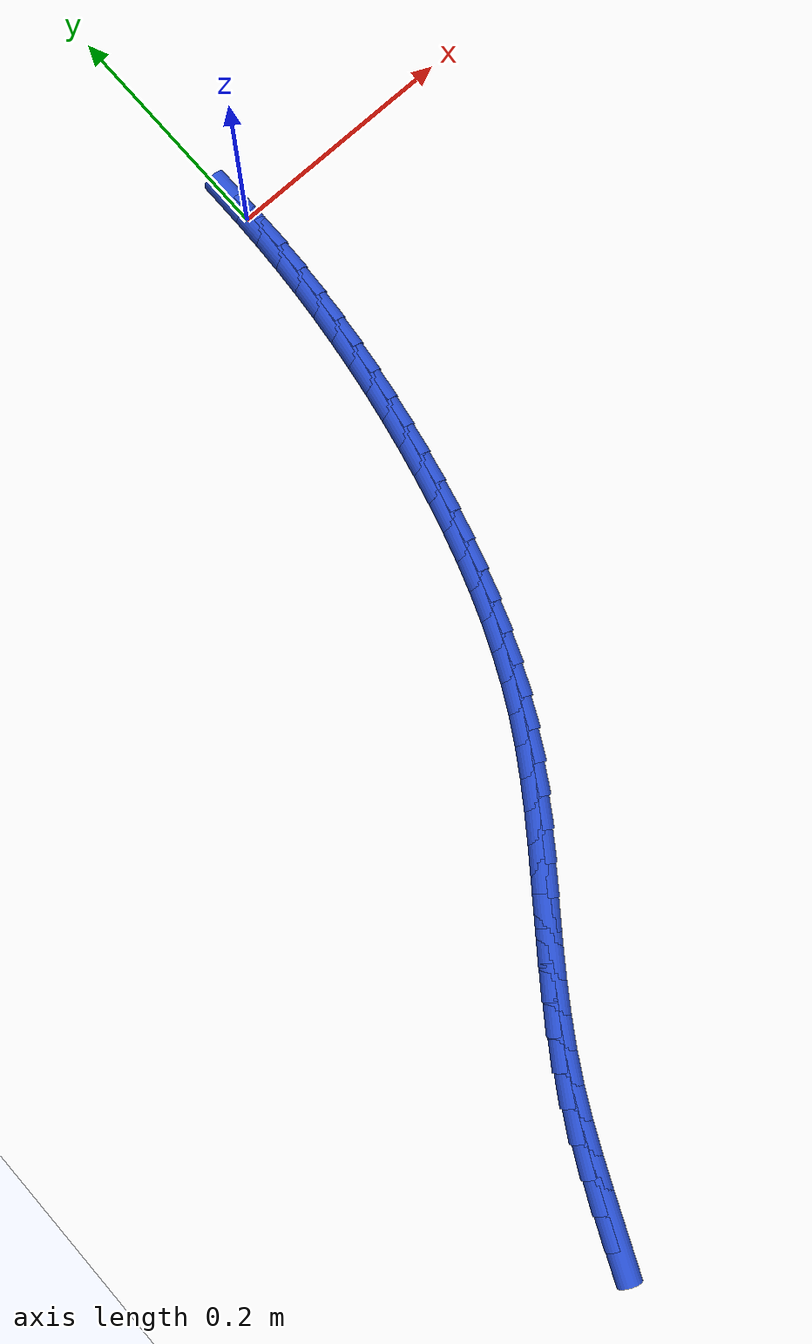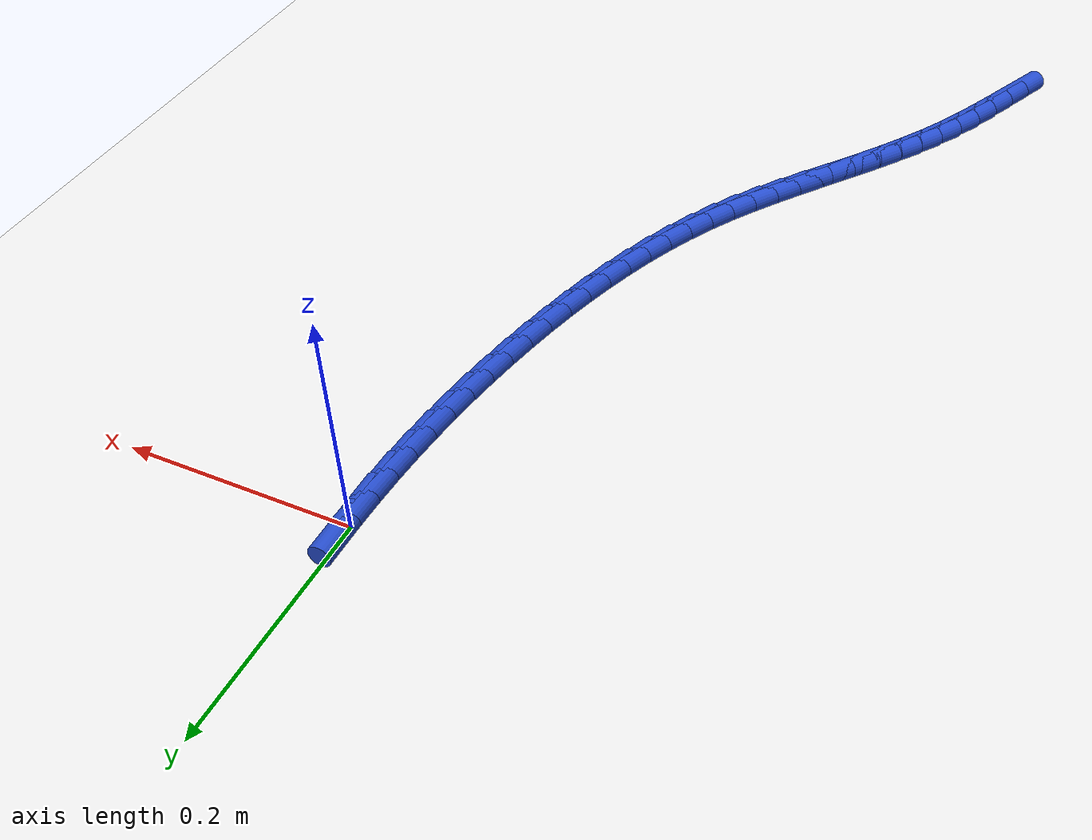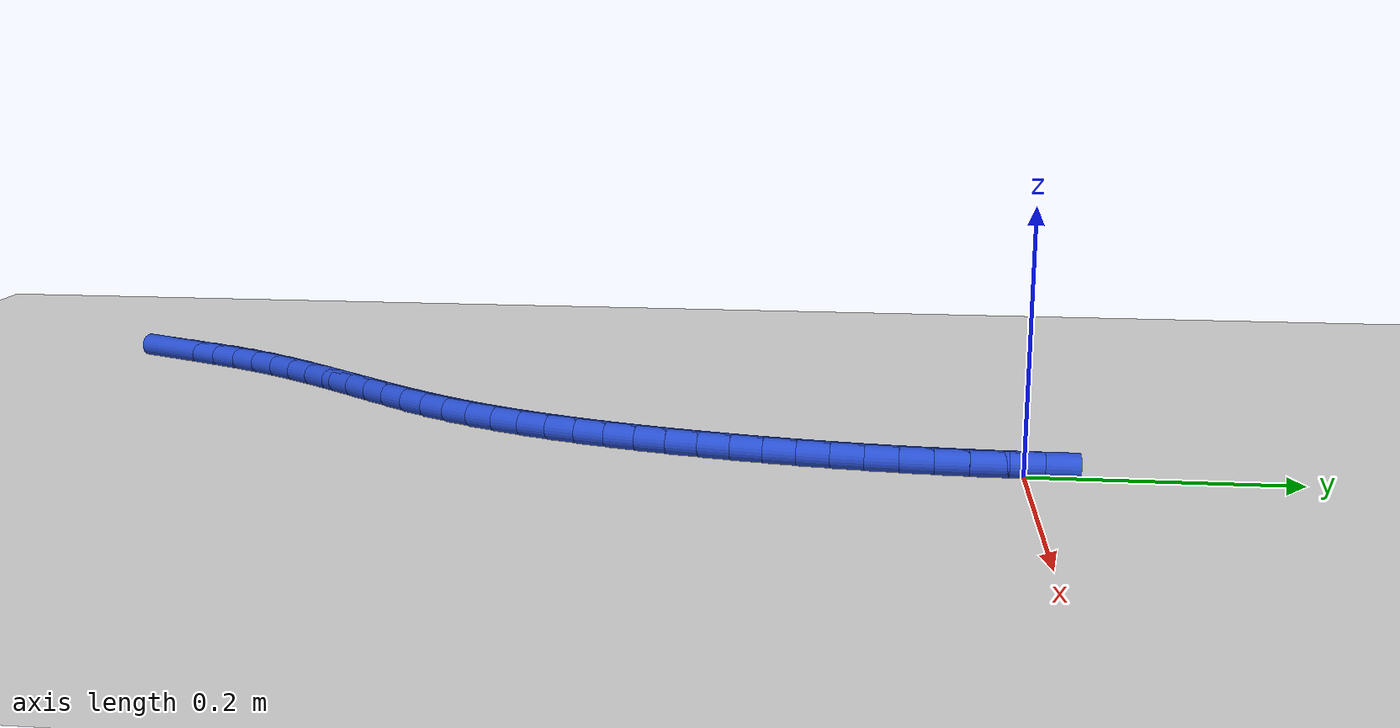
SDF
<sdf version="1.6">
 <world name="default">
  <model name="ground_plane">
   <static>1</static>
   <link name="link">
    <collision name="collision">
     <geometry><plane><normal>0 0 1</normal><size>100 100</size></plane></geometry>
     <surface><friction><ode><mu>100</mu><mu2>50</mu2></ode></friction></surface>
    </collision>
    <visual name="visual">
     <cast_shadows>0</cast_shadows>
     <geometry><plane><normal>0 0 1</normal><size>100 100</size></plane></geometry>
     <material>
      <script><uri>file://media/materials/scripts/gazebo.material</uri><name>Gazebo/WhiteGlow</name></script>
     </material>
    </visual>
   </link>
  </model>
  <model name="line">
   <link name="link_237">
    <pose>-0.3073137152494951 -0.7677911914423744 0.01 0 1.57 1.149850627003506</pose>
    <collision name="collision">
     <geometry><cylinder><radius>0.01</radius><length>0.08</length></cylinder></geometry>
    </collision>
    <visual name="visual">
     <material>
      <script><name>Gazebo/Blue</name><uri>file://media/materials/scripts/gazebo.material</uri></script>
     </material>
     <geometry><cylinder><radius>0.01</radius><length>0.08</length></cylinder></geometry>
    </visual>
   </link>
   <link name="link_238">
    <pose>-0.29653756648308116 -0.7437215633743144 0.01 0 1.57 1.1388877716009822</pose>
    <collision name="collision">
     <geometry><cylinder><radius>0.01</radius><length>0.08</length></cylinder></geometry>
    </collision>
    <visual name="visual">
     <material>
      <script><name>Gazebo/Blue</name><uri>file://media/materials/scripts/gazebo.material</uri></script>
     </material>
     <geometry><cylinder><radius>0.01</radius><length>0.08</length></cylinder></geometry>
    </visual>
   </link>
   <link name="link_239">
    <pose>-0.28550093639197394 -0.7197774561268264 0.01 0 1.57 1.1165323524472655</pose>
    <collision name="collision">
     <geometry><cylinder><radius>0.01</radius><length>0.08</length></cylinder></geometry>
    </collision>
    <visual name="visual">
     <material>
      <script><name>Gazebo/Blue</name><uri>file://media/materials/scripts/gazebo.material</uri></script>
     </material>
     <geometry><cylinder><radius>0.01</radius><length>0.08</length></cylinder></geometry>
    </visual>
   </link>
   <link name="link_240">
    <pose>-0.27397549840912494 -0.6961754686306784 0.01 0 1.57 1.0824340858833814</pose>
    <collision name="collision">
     <geometry><cylinder><radius>0.01</radius><length>0.08</length></cylinder></geometry>
    </collision>
    <visual name="visual">
     <material>
      <script><name>Gazebo/Blue</name><uri>file://media/materials/scripts/gazebo.material</uri></script>
     </material>
     <geometry><cylinder><radius>0.01</radius><length>0.08</length></cylinder></geometry>
    </visual>
   </link>
   <link name="link_241">
    <pose>-0.2617329259674875 -0.6731321998166413 0.01 0 1.57 1.0381013276410038</pose>
    <collision name="collision">
     <geometry><cylinder><radius>0.01</radius><length>0.08</length></cylinder></geometry>
    </collision>
    <visual name="visual">
     <material>
      <script><name>Gazebo/Blue</name><uri>file://media/materials/scripts/gazebo.material</uri></script>
     </material>
     <geometry><cylinder><radius>0.01</radius><length>0.08</length></cylinder></geometry>
    </visual>
   </link>
   <link name="link_242">
    <pose>-0.24858489867547576 -0.6508301307182196 0.01 0 1.57 0.9967221538252895</pose>
    <collision name="collision">
     <geometry><cylinder><radius>0.01</radius><length>0.08</length></cylinder></geometry>
    </collision>
    <visual name="visual">
     <material>
      <script><name>Gazebo/Blue</name><uri>file://media/materials/scripts/gazebo.material</uri></script>
     </material>
     <geometry><cylinder><radius>0.01</radius><length>0.08</length></cylinder></geometry>
    </visual>
   </link>
   <link name="link_243">
    <pose>-0.2346110373717227 -0.6292232378628161 0.01 0 1.57 0.9641009952559144</pose>
    <collision name="collision">
     <geometry><cylinder><radius>0.01</radius><length>0.08</length></cylinder></geometry>
    </collision>
    <visual name="visual">
     <material>
      <script><name>Gazebo/Blue</name><uri>file://media/materials/scripts/gazebo.material</uri></script>
     </material>
     <geometry><cylinder><radius>0.01</radius><length>0.08</length></cylinder></geometry>
    </visual>
   </link>
   <link name="link_244">
    <pose>-0.2200010022635979 -0.6081716544690369 0.01 0 1.57 0.9404835380209472</pose>
    <collision name="collision">
     <geometry><cylinder><radius>0.01</radius><length>0.08</length></cylinder></geometry>
    </collision>
    <visual name="visual">
     <material>
      <script><name>Gazebo/Blue</name><uri>file://media/materials/scripts/gazebo.material</uri></script>
     </material>
     <geometry><cylinder><radius>0.01</radius><length>0.08</length></cylinder></geometry>
    </visual>
   </link>
   <link name="link_245">
    <pose>-0.204944790227321 -0.5875352266389892 0.01 0 1.57 0.9259976357343236</pose>
    <collision name="collision">
     <geometry><cylinder><radius>0.01</radius><length>0.08</length></cylinder></geometry>
    </collision>
    <visual name="visual">
     <material>
      <script><name>Gazebo/Blue</name><uri>file://media/materials/scripts/gazebo.material</uri></script>
     </material>
     <geometry><cylinder><radius>0.01</radius><length>0.08</length></cylinder></geometry>
    </visual>
   </link>
   <link name="link_246">
    <pose>-0.18963239813911023 -0.5671738004747772 0.01 0 1.57 0.9207261022490705</pose>
    <collision name="collision">
     <geometry><cylinder><radius>0.01</radius><length>0.08</length></cylinder></geometry>
    </collision>
    <visual name="visual">
     <material>
      <script><name>Gazebo/Blue</name><uri>file://media/materials/scripts/gazebo.material</uri></script>
     </material>
     <geometry><cylinder><radius>0.01</radius><length>0.08</length></cylinder></geometry>
    </visual>
   </link>
   <link name="link_247">
    <pose>-0.1742538228751839 -0.5469472220785061 0.01 0 1.57 0.9247426304272376</pose>
    <collision name="collision">
     <geometry><cylinder><radius>0.01</radius><length>0.08</length></cylinder></geometry>
    </collision>
    <visual name="visual">
     <material>
      <script><name>Gazebo/Blue</name><uri>file://media/materials/scripts/gazebo.material</uri></script>
     </material>
     <geometry><cylinder><radius>0.01</radius><length>0.08</length></cylinder></geometry>
    </visual>
   </link>
   <link name="link_248">
    <pose>-0.1589990613117617 -0.5267153375522828 0.01 0 1.57 0.9381252034271831</pose>
    <collision name="collision">
     <geometry><cylinder><radius>0.01</radius><length>0.08</length></cylinder></geometry>
    </collision>
    <visual name="visual">
     <material>
      <script><name>Gazebo/Blue</name><uri>file://media/materials/scripts/gazebo.material</uri></script>
     </material>
     <geometry><cylinder><radius>0.01</radius><length>0.08</length></cylinder></geometry>
    </visual>
   </link>
   <link name="link_249">
    <pose>-0.14405811032506147 -0.5063379929982113 0.01 0 1.57 0.960945510481932</pose>
    <collision name="collision">
     <geometry><cylinder><radius>0.01</radius><length>0.08</length></cylinder></geometry>
    </collision>
    <visual name="visual">
     <material>
      <script><name>Gazebo/Blue</name><uri>file://media/materials/scripts/gazebo.material</uri></script>
     </material>
     <geometry><cylinder><radius>0.01</radius><length>0.08</length></cylinder></geometry>
    </visual>
   </link>
   <link name="link_250">
    <pose>-0.12962096679130275 -0.485675034518398 0.01 0 1.57 0.9932330703234532</pose>
    <collision name="collision">
     <geometry><cylinder><radius>0.01</radius><length>0.08</length></cylinder></geometry>
    </collision>
    <visual name="visual">
     <material>
      <script><name>Gazebo/Blue</name><uri>file://media/materials/scripts/gazebo.material</uri></script>
     </material>
     <geometry><cylinder><radius>0.01</radius><length>0.08</length></cylinder></geometry>
    </visual>
   </link>
   <link name="link_251">
    <pose>-0.11587762758670354 -0.46458630821494734 0.01 0 1.57 1.0348734975231653</pose>
    <collision name="collision">
     <geometry><cylinder><radius>0.01</radius><length>0.08</length></cylinder></geometry>
    </collision>
    <visual name="visual">
     <material>
      <script><name>Gazebo/Blue</name><uri>file://media/materials/scripts/gazebo.material</uri></script>
     </material>
     <geometry><cylinder><radius>0.01</radius><length>0.08</length></cylinder></geometry>
    </visual>
   </link>
   <link name="link_252">
    <pose>-0.10301731130672799 -0.4429323329827626 0.01 0 1.57 1.0815627000122365</pose>
    <collision name="collision">
     <geometry><cylinder><radius>0.01</radius><length>0.08</length></cylinder></geometry>
    </collision>
    <visual name="visual">
     <material>
      <script><name>Gazebo/Blue</name><uri>file://media/materials/scripts/gazebo.material</uri></script>
     </material>
     <geometry><cylinder><radius>0.01</radius><length>0.08</length></cylinder></geometry>
    </visual>
   </link>
   <link name="link_253">
    <pose>-0.09114993977845133 -0.4206421766230269 0.01 0 1.57 1.1256517317873156</pose>
    <collision name="collision">
     <geometry><cylinder><radius>0.01</radius><length>0.08</length></cylinder></geometry>
    </collision>
    <visual name="visual">
     <material>
      <script><name>Gazebo/Blue</name><uri>file://media/materials/scripts/gazebo.material</uri></script>
     </material>
     <geometry><cylinder><radius>0.01</radius><length>0.08</length></cylinder></geometry>
    </visual>
   </link>
   <link name="link_254">
    <pose>-0.0802388439117519 -0.3977716289616603 0.01 0 1.57 1.1663844338856688</pose>
    <collision name="collision">
     <geometry><cylinder><radius>0.01</radius><length>0.08</length></cylinder></geometry>
    </collision>
    <visual name="visual">
     <material>
      <script><name>Gazebo/Blue</name><uri>file://media/materials/scripts/gazebo.material</uri></script>
     </material>
     <geometry><cylinder><radius>0.01</radius><length>0.08</length></cylinder></geometry>
    </visual>
   </link>
   <link name="link_255">
    <pose>-0.07023150298267897 -0.37439018293233256 0.01 0 1.57 1.2038612422416042</pose>
    <collision name="collision">
     <geometry><cylinder><radius>0.01</radius><length>0.08</length></cylinder></geometry>
    </collision>
    <visual name="visual">
     <material>
      <script><name>Gazebo/Blue</name><uri>file://media/materials/scripts/gazebo.material</uri></script>
     </material>
     <geometry><cylinder><radius>0.01</radius><length>0.08</length></cylinder></geometry>
    </visual>
   </link>
   <link name="link_256">
    <pose>-0.06107539626728306 -0.35056733146871677 0.01 0 1.57 1.2382061000314994</pose>
    <collision name="collision">
     <geometry><cylinder><radius>0.01</radius><length>0.08</length></cylinder></geometry>
    </collision>
    <visual name="visual">
     <material>
      <script><name>Gazebo/Blue</name><uri>file://media/materials/scripts/gazebo.material</uri></script>
     </material>
     <geometry><cylinder><radius>0.01</radius><length>0.08</length></cylinder></geometry>
    </visual>
   </link>
   <link name="link_257">
    <pose>-0.05271800304161386 -0.3263725675044837 0.01 0 1.57 1.2695549274519367</pose>
    <collision name="collision">
     <geometry><cylinder><radius>0.01</radius><length>0.08</length></cylinder></geometry>
    </collision>
    <visual name="visual">
     <material>
      <script><name>Gazebo/Blue</name><uri>file://media/materials/scripts/gazebo.material</uri></script>
     </material>
     <geometry><cylinder><radius>0.01</radius><length>0.08</length></cylinder></geometry>
    </visual>
   </link>
   <link name="link_258">
    <pose>-0.045106802581721096 -0.30187538397330405 0.01 0 1.57 1.2980464613403275</pose>
    <collision name="collision">
     <geometry><cylinder><radius>0.01</radius><length>0.08</length></cylinder></geometry>
    </collision>
    <visual name="visual">
     <material>
      <script><name>Gazebo/Blue</name><uri>file://media/materials/scripts/gazebo.material</uri></script>
     </material>
     <geometry><cylinder><radius>0.01</radius><length>0.08</length></cylinder></geometry>
    </visual>
   </link>
   <link name="link_259">
    <pose>-0.03818927416365516 -0.27714527380885073 0.01 0 1.57 1.3238151776322062</pose>
    <collision name="collision">
     <geometry><cylinder><radius>0.01</radius><length>0.08</length></cylinder></geometry>
    </collision>
    <visual name="visual">
     <material>
      <script><name>Gazebo/Blue</name><uri>file://media/materials/scripts/gazebo.material</uri></script>
     </material>
     <geometry><cylinder><radius>0.01</radius><length>0.08</length></cylinder></geometry>
    </visual>
   </link>
   <link name="link_260">
    <pose>-0.0319128970634656 -0.2522517299447937 0.01 0 1.57 1.3469870313457595</pose>
    <collision name="collision">
     <geometry><cylinder><radius>0.01</radius><length>0.08</length></cylinder></geometry>
    </collision>
    <visual name="visual">
     <material>
      <script><name>Gazebo/Blue</name><uri>file://media/materials/scripts/gazebo.material</uri></script>
     </material>
     <geometry><cylinder><radius>0.01</radius><length>0.08</length></cylinder></geometry>
    </visual>
   </link>
   <link name="link_261">
    <pose>-0.026225173114953714 -0.2272642149438545 0.01 0 1.57 1.3683378291648403</pose>
    <collision name="collision">
     <geometry><cylinder><radius>0.01</radius><length>0.08</length></cylinder></geometry>
    </collision>
    <visual name="visual">
     <material>
      <script><name>Gazebo/Blue</name><uri>file://media/materials/scripts/gazebo.material</uri></script>
     </material>
     <geometry><cylinder><radius>0.01</radius><length>0.08</length></cylinder></geometry>
    </visual>
   </link>
   <link name="link_262">
    <pose>-0.021087181676382166 -0.20223391107390945 0.01 0 1.57 1.3896979925154054</pose>
    <collision name="collision">
     <geometry><cylinder><radius>0.01</radius><length>0.08</length></cylinder></geometry>
    </collision>
    <visual name="visual">
     <material>
      <script><name>Gazebo/Blue</name><uri>file://media/materials/scripts/gazebo.material</uri></script>
     </material>
     <geometry><cylinder><radius>0.01</radius><length>0.08</length></cylinder></geometry>
    </visual>
   </link>
   <link name="link_263">
    <pose>-0.01649654863543257 -0.17716279565866197 0.01 0 1.57 1.411339221535933</pose>
    <collision name="collision">
     <geometry><cylinder><radius>0.01</radius><length>0.08</length></cylinder></geometry>
    </collision>
    <visual name="visual">
     <material>
      <script><name>Gazebo/Blue</name><uri>file://media/materials/scripts/gazebo.material</uri></script>
     </material>
     <geometry><cylinder><radius>0.01</radius><length>0.08</length></cylinder></geometry>
    </visual>
   </link>
   <link name="link_264">
    <pose>-0.012456986462554708 -0.1520446512637839 0.01 0 1.57 1.4332287165501008</pose>
    <collision name="collision">
     <geometry><cylinder><radius>0.01</radius><length>0.08</length></cylinder></geometry>
    </collision>
    <visual name="visual">
     <material>
      <script><name>Gazebo/Blue</name><uri>file://media/materials/scripts/gazebo.material</uri></script>
     </material>
     <geometry><cylinder><radius>0.01</radius><length>0.08</length></cylinder></geometry>
    </visual>
   </link>
   <link name="link_265">
    <pose>-0.008972207628198873 -0.12687326045495004 0.01 0 1.57 1.4553318667275645</pose>
    <collision name="collision">
     <geometry><cylinder><radius>0.01</radius><length>0.08</length></cylinder></geometry>
    </collision>
    <visual name="visual">
     <material>
      <script><name>Gazebo/Blue</name><uri>file://media/materials/scripts/gazebo.material</uri></script>
     </material>
     <geometry><cylinder><radius>0.01</radius><length>0.08</length></cylinder></geometry>
    </visual>
   </link>
   <link name="link_266">
    <pose>-0.006045924602814913 -0.1016424057978324 0.01 0 1.57 1.4776124937111512</pose>
    <collision name="collision">
     <geometry><cylinder><radius>0.01</radius><length>0.08</length></cylinder></geometry>
    </collision>
    <visual name="visual">
     <material>
      <script><name>Gazebo/Blue</name><uri>file://media/materials/scripts/gazebo.material</uri></script>
     </material>
     <geometry><cylinder><radius>0.01</radius><length>0.08</length></cylinder></geometry>
    </visual>
   </link>
   <link name="link_267">
    <pose>-0.0036818498568530473 -0.0763458698581057 0.01 0 1.57 1.5000331267426268</pose>
    <collision name="collision">
     <geometry><cylinder><radius>0.01</radius><length>0.08</length></cylinder></geometry>
    </collision>
    <visual name="visual">
     <material>
      <script><name>Gazebo/Blue</name><uri>file://media/materials/scripts/gazebo.material</uri></script>
     </material>
     <geometry><cylinder><radius>0.01</radius><length>0.08</length></cylinder></geometry>
    </visual>
   </link>
   <link name="link_268">
    <pose>-0.0018836958607632423 -0.050977435201442656 0.01 0 1.57 1.5225553044979176</pose>
    <collision name="collision">
     <geometry><cylinder><radius>0.01</radius><length>0.08</length></cylinder></geometry>
    </collision>
    <visual name="visual">
     <material>
      <script><name>Gazebo/Blue</name><uri>file://media/materials/scripts/gazebo.material</uri></script>
     </material>
     <geometry><cylinder><radius>0.01</radius><length>0.08</length></cylinder></geometry>
    </visual>
   </link>
   <link name="link_269">
    <pose>-0.000655175084995523 -0.025530884393515824 0.01 0 1.57 1.5451398978304898</pose>
    <collision name="collision">
     <geometry><cylinder><radius>0.01</radius><length>0.08</length></cylinder></geometry>
    </collision>
    <visual name="visual">
     <material>
      <script><name>Gazebo/Blue</name><uri>file://media/materials/scripts/gazebo.material</uri></script>
     </material>
     <geometry><cylinder><radius>0.01</radius><length>0.08</length></cylinder></geometry>
    </visual>
   </link>
   <link name="link_270">
    <pose>-1.0842021724855044e-17 -1.1102230246251565e-16 0.01 0 1.57 1.5677474468058197</pose>
    <collision name="collision">
     <geometry><cylinder><radius>0.01</radius><length>0.08</length></cylinder></geometry>
    </collision>
    <visual name="visual">
     <material>
      <script><name>Gazebo/Blue</name><uri>file://media/materials/scripts/gazebo.material</uri></script>
     </material>
     <geometry><cylinder><radius>0.01</radius><length>0.08</length></cylinder></geometry>
    </visual>
   </link>
  </model>
 </world>
</sdf>
